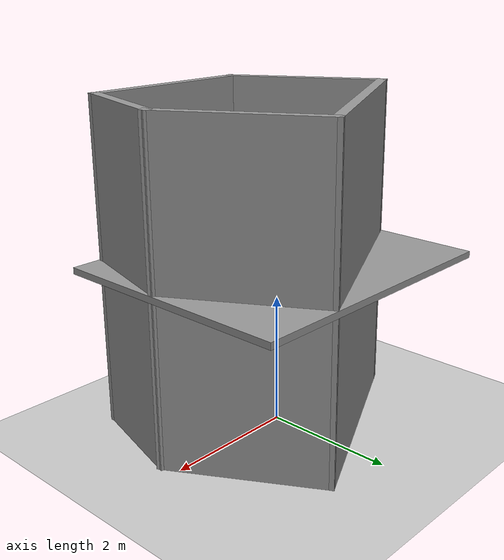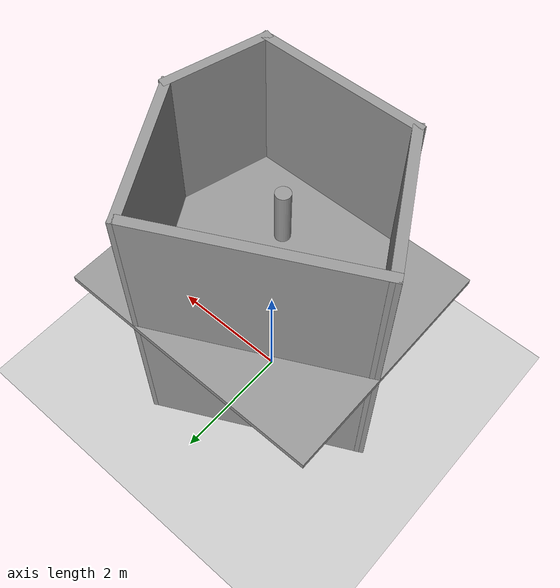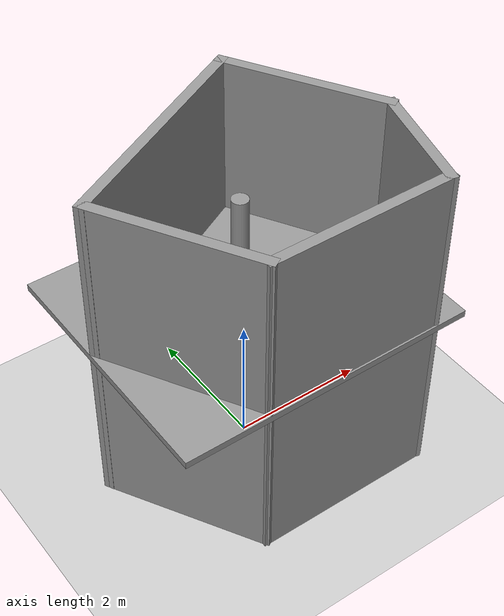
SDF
<sdf version='1.4'>
  <world name='default'>
    <!-- A global light source -->
    <include>
      <uri>model://sun</uri>
    </include>

    <!-- A ground plane -->
    <include>
      <uri>model://ground_plane</uri>
    </include>

    <physics type="ode">
      <real_time_update_rate>1000.0</real_time_update_rate>
      <max_step_size>0.001</max_step_size>
      <real_time_factor>1</real_time_factor>
      <ode>
        <solver>
          <type>quick</type>
          <iters>150</iters>
          <precon_iters>0</precon_iters>
          <sor>1.400000</sor>
          <use_dynamic_moi_rescaling>1</use_dynamic_moi_rescaling>
        </solver>
        <constraints>
          <cfm>0.00001</cfm>
          <erp>0.2</erp>
          <contact_max_correcting_vel>2000.000000</contact_max_correcting_vel>
          <contact_surface_layer>0.01000</contact_surface_layer>
        </constraints>
      </ode>
    </physics>

    <!-- Load world -->

    <include>
	<static>true</static>
	<pose>0 0 0 0 0 0</pose>
      <uri>model://world</uri>
    </include>
   <include>
	<pose>0.4 -0.7 3.1 0 0 0</pose>
      <uri>model://small_cylinder</uri>
    </include>

    <include>
	<pose>0.44 0.7 3.1 0 0 0</pose>
      <uri>model://small_cylinder</uri>
    </include>
    <include>
	<pose>-1.1 -0.2 3.1 0 0 0</pose>
      <uri>model://small_cylinder</uri>
    </include>

    <scene>
      <ambient>0.4 0.4 0.4 1</ambient>
      <background>0.7 0.7 0.7 1</background>
      <shadows>true</shadows>
    </scene>

    <gui fullscreen='0'>
      <camera name='user_camera'>
        <pose>0.8 0.0 12.0 0 1.5708 0</pose>
        <view_controller>orbit</view_controller>
      </camera>
    </gui>
  </world>
</sdf>

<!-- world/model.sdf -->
<sdf version='1.6'>
  <model name='world'>
    <pose frame=''>-0.518437 -1.99134 0 0 -0 0</pose>
    <link name='Floor_0'>
      <collision name='Floor_0_Collision'>
        <geometry>
          <box>
            <size>4.39401 3.78554 0.1</size>
          </box>
        </geometry>
        <pose frame=''>0 0 0.05 0 -0 0</pose>
      </collision>
      <visual name='Floor_0_Visual'>
        <pose frame=''>0 0 0.05 0 -0 0</pose>
        <geometry>
          <box>
            <size>4.39401 3.78554 0.1</size>
          </box>
        </geometry>
        <material>
          <script>
            <uri>file://media/materials/scripts/gazebo.material</uri>
            <name>Gazebo/Grey</name>
          </script>
          <ambient>1 1 1 1</ambient>
        </material>
        <meta>
          <layer>1</layer>
        </meta>
      </visual>
      <pose frame=''>0 0 2.5 0 -0 0</pose>
    </link>
    <link name='Wall_0'>
      <collision name='Wall_0_Collision'>
        <geometry>
          <box>
            <size>2.5 0.15 2.5</size>
          </box>
        </geometry>
        <pose frame=''>0 0 1.25 0 -0 0</pose>
      </collision>
      <visual name='Wall_0_Visual'>
        <pose frame=''>0 0 1.25 0 -0 0</pose>
        <geometry>
          <box>
            <size>2.5 0.15 2.5</size>
          </box>
        </geometry>
        <material>
          <script>
            <uri>file://media/materials/scripts/gazebo.material</uri>
            <name>Gazebo/Grey</name>
          </script>
          <ambient>1 1 1 1</ambient>
        </material>
        <meta>
          <layer>0</layer>
        </meta>
      </visual>
      <pose frame=''>-1.50706 -0.772741 0 0 -0 -1.0472</pose>
    </link>
    <link name='Wall_1'>
      <collision name='Wall_1_Collision'>
        <geometry>
          <box>
            <size>2.75 0.15 2.5</size>
          </box>
        </geometry>
        <pose frame=''>0 0 1.25 0 -0 0</pose>
      </collision>
      <visual name='Wall_1_Visual'>
        <pose frame=''>0 0 1.25 0 -0 0</pose>
        <geometry>
          <box>
            <size>2.75 0.15 2.5</size>
          </box>
        </geometry>
        <material>
          <script>
            <uri>file://media/materials/scripts/gazebo.material</uri>
            <name>Gazebo/Grey</name>
          </script>
          <ambient>1 1 1 1</ambient>
        </material>
        <meta>
          <layer>0</layer>
        </meta>
      </visual>
      <pose frame=''>0.380445 -1.79032 0 0 -0 0</pose>
    </link>
    <link name='Wall_10'>
      <collision name='Wall_10_Collision'>
        <geometry>
          <box>
            <size>3.53724 0.15 2.5</size>
          </box>
        </geometry>
        <pose frame=''>0 0 1.25 0 -0 0</pose>
      </collision>
      <visual name='Wall_10_Visual'>
        <pose frame=''>0 0 1.25 0 -0 0</pose>
        <geometry>
          <box>
            <size>3.53724 0.15 2.5</size>
          </box>
        </geometry>
        <material>
          <script>
            <uri>file://media/materials/scripts/gazebo.material</uri>
            <name>Gazebo/Grey</name>
          </script>
          <ambient>1 1 1 1</ambient>
        </material>
        <meta>
          <layer>1</layer>
        </meta>
      </visual>
      <pose frame=''>-0.5875 1.01758 2.5 0 -0 -2.6678</pose>
    </link>
    <link name='Wall_2'>
      <collision name='Wall_2_Collision'>
        <geometry>
          <box>
            <size>1.75 0.15 2.5</size>
          </box>
        </geometry>
        <pose frame=''>0 0 1.25 0 -0 0</pose>
      </collision>
      <visual name='Wall_2_Visual'>
        <pose frame=''>0 0 1.25 0 -0 0</pose>
        <geometry>
          <box>
            <size>1.75 0.15 2.5</size>
          </box>
        </geometry>
        <material>
          <script>
            <uri>file://media/materials/scripts/gazebo.material</uri>
            <name>Gazebo/Grey</name>
          </script>
          <ambient>1 1 1 1</ambient>
        </material>
        <meta>
          <layer>0</layer>
        </meta>
      </visual>
      <pose frame=''>1.8875 -1.01758 0 0 -0 1.309</pose>
    </link>
    <link name='Wall_3'>
      <collision name='Wall_3_Collision'>
        <geometry>
          <box>
            <size>2.5 0.15 2.5</size>
          </box>
        </geometry>
        <pose frame=''>0 0 1.25 0 -0 0</pose>
      </collision>
      <visual name='Wall_3_Visual'>
        <pose frame=''>0 0 1.25 0 -0 0</pose>
        <geometry>
          <box>
            <size>2.5 0.15 2.5</size>
          </box>
        </geometry>
        <material>
          <script>
            <uri>file://media/materials/scripts/gazebo.material</uri>
            <name>Gazebo/Grey</name>
          </script>
          <ambient>1 1 1 1</ambient>
        </material>
        <meta>
          <layer>0</layer>
        </meta>
      </visual>
      <pose frame=''>1.50706 0.772741 0 0 -0 2.0944</pose>
    </link>
    <link name='Wall_4'>
      <collision name='Wall_4_Collision'>
        <geometry>
          <box>
            <size>3.53724 0.15 2.5</size>
          </box>
        </geometry>
        <pose frame=''>0 0 1.25 0 -0 0</pose>
      </collision>
      <visual name='Wall_4_Visual'>
        <pose frame=''>0 0 1.25 0 -0 0</pose>
        <geometry>
          <box>
            <size>3.53724 0.15 2.5</size>
          </box>
        </geometry>
        <material>
          <script>
            <uri>file://media/materials/scripts/gazebo.material</uri>
            <name>Gazebo/Grey</name>
          </script>
          <ambient>1 1 1 1</ambient>
        </material>
        <meta>
          <layer>0</layer>
        </meta>
      </visual>
      <pose frame=''>-0.5875 1.01758 0 0 -0 -2.6678</pose>
    </link>
    <link name='Wall_6'>
      <collision name='Wall_6_Collision'>
        <geometry>
          <box>
            <size>2.5 0.15 2.5</size>
          </box>
        </geometry>
        <pose frame=''>0 0 1.25 0 -0 0</pose>
      </collision>
      <visual name='Wall_6_Visual'>
        <pose frame=''>0 0 1.25 0 -0 0</pose>
        <geometry>
          <box>
            <size>2.5 0.15 2.5</size>
          </box>
        </geometry>
        <material>
          <script>
            <uri>file://media/materials/scripts/gazebo.material</uri>
            <name>Gazebo/Grey</name>
          </script>
          <ambient>1 1 1 1</ambient>
        </material>
        <meta>
          <layer>1</layer>
        </meta>
      </visual>
      <pose frame=''>-1.50706 -0.772741 2.5 0 -0 -1.0472</pose>
    </link>
    <link name='Wall_7'>
      <collision name='Wall_7_Collision'>
        <geometry>
          <box>
            <size>2.75 0.15 2.5</size>
          </box>
        </geometry>
        <pose frame=''>0 0 1.25 0 -0 0</pose>
      </collision>
      <visual name='Wall_7_Visual'>
        <pose frame=''>0 0 1.25 0 -0 0</pose>
        <geometry>
          <box>
            <size>2.75 0.15 2.5</size>
          </box>
        </geometry>
        <material>
          <script>
            <uri>file://media/materials/scripts/gazebo.material</uri>
            <name>Gazebo/Grey</name>
          </script>
          <ambient>1 1 1 1</ambient>
        </material>
        <meta>
          <layer>1</layer>
        </meta>
      </visual>
      <pose frame=''>0.380445 -1.79032 2.5 0 -0 0</pose>
    </link>
    <link name='Wall_8'>
      <collision name='Wall_8_Collision'>
        <geometry>
          <box>
            <size>1.75 0.15 2.5</size>
          </box>
        </geometry>
        <pose frame=''>0 0 1.25 0 -0 0</pose>
      </collision>
      <visual name='Wall_8_Visual'>
        <pose frame=''>0 0 1.25 0 -0 0</pose>
        <geometry>
          <box>
            <size>1.75 0.15 2.5</size>
          </box>
        </geometry>
        <material>
          <script>
            <uri>file://media/materials/scripts/gazebo.material</uri>
            <name>Gazebo/Grey</name>
          </script>
          <ambient>1 1 1 1</ambient>
        </material>
        <meta>
          <layer>1</layer>
        </meta>
      </visual>
      <pose frame=''>1.8875 -1.01758 2.5 0 -0 1.309</pose>
    </link>
    <link name='Wall_9'>
      <collision name='Wall_9_Collision'>
        <geometry>
          <box>
            <size>2.5 0.15 2.5</size>
          </box>
        </geometry>
        <pose frame=''>0 0 1.25 0 -0 0</pose>
      </collision>
      <visual name='Wall_9_Visual'>
        <pose frame=''>0 0 1.25 0 -0 0</pose>
        <geometry>
          <box>
            <size>2.5 0.15 2.5</size>
          </box>
        </geometry>
        <material>
          <script>
            <uri>file://media/materials/scripts/gazebo.material</uri>
            <name>Gazebo/Grey</name>
          </script>
          <ambient>1 1 1 1</ambient>
        </material>
        <meta>
          <layer>1</layer>
        </meta>
      </visual>
      <pose frame=''>1.50706 0.772741 2.5 0 -0 2.0944</pose>
    </link>
    <static>1</static>
  </model>
</sdf>

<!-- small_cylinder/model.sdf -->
<sdf version='1.6'>
  <model name='small_cylinder'>
    <link name='link_0'>
      <inertial>
        <mass>0.0645321</mass>
        <inertia>
          <ixx>0.00563792</ixx>
          <ixy>0</ixy>
          <ixz>0</ixz>
          <iyy>0.00563792</iyy>
          <iyz>0</iyz>
          <izz>0.000520485</izz>
        </inertia>
        <pose frame=''>0 0 0 0 -0 0</pose>
      </inertial>
      <pose frame=''>-0 -0 0 0 -0 0</pose>
      <visual name='visual'>
        <pose frame=''>0 0 0 0 -0 0</pose>
        <geometry>
          <cylinder>
            <radius>0.127008</radius>
            <length>1</length>
          </cylinder>
        </geometry>
        <material>
          <lighting>1</lighting>
          <script>
            <uri>file://media/materials/scripts/gazebo.material</uri>
            <name>Gazebo/Grey</name>
          </script>
        </material>
        <transparency>0</transparency>
        <cast_shadows>1</cast_shadows>
      </visual>
      <collision name='collision'>
        <laser_retro>0</laser_retro>
        <max_contacts>10</max_contacts>
        <pose frame=''>0 0 0 0 -0 0</pose>
        <geometry>
          <cylinder>
            <radius>0.127008</radius>
            <length>1</length>
          </cylinder>
        </geometry>
        <surface>
          <friction>
            <ode>
              <mu>1</mu>
              <mu2>1</mu2>
              <fdir1>0 0 0</fdir1>
              <slip1>0</slip1>
              <slip2>0</slip2>
            </ode>
            <torsional>
              <coefficient>1</coefficient>
              <patch_radius>0</patch_radius>
              <surface_radius>0</surface_radius>
              <use_patch_radius>1</use_patch_radius>
              <ode>
                <slip>0</slip>
              </ode>
            </torsional>
          </friction>
          <bounce>
            <restitution_coefficient>0</restitution_coefficient>
            <threshold>1e+06</threshold>
          </bounce>
          <contact>
            <collide_without_contact>0</collide_without_contact>
            <collide_without_contact_bitmask>1</collide_without_contact_bitmask>
            <collide_bitmask>1</collide_bitmask>
            <ode>
              <soft_cfm>0</soft_cfm>
              <soft_erp>0.2</soft_erp>
              <kp>1e+13</kp>
              <kd>1</kd>
              <max_vel>0.01</max_vel>
              <min_depth>0</min_depth>
            </ode>
            <bullet>
              <split_impulse>1</split_impulse>
              <split_impulse_penetration_threshold>-0.01</split_impulse_penetration_threshold>
              <soft_cfm>0</soft_cfm>
              <soft_erp>0.2</soft_erp>
              <kp>1e+13</kp>
              <kd>1</kd>
            </bullet>
          </contact>
        </surface>
      </collision>
    </link>
    <static>0</static>
    <allow_auto_disable>1</allow_auto_disable>
  </model>
</sdf>
